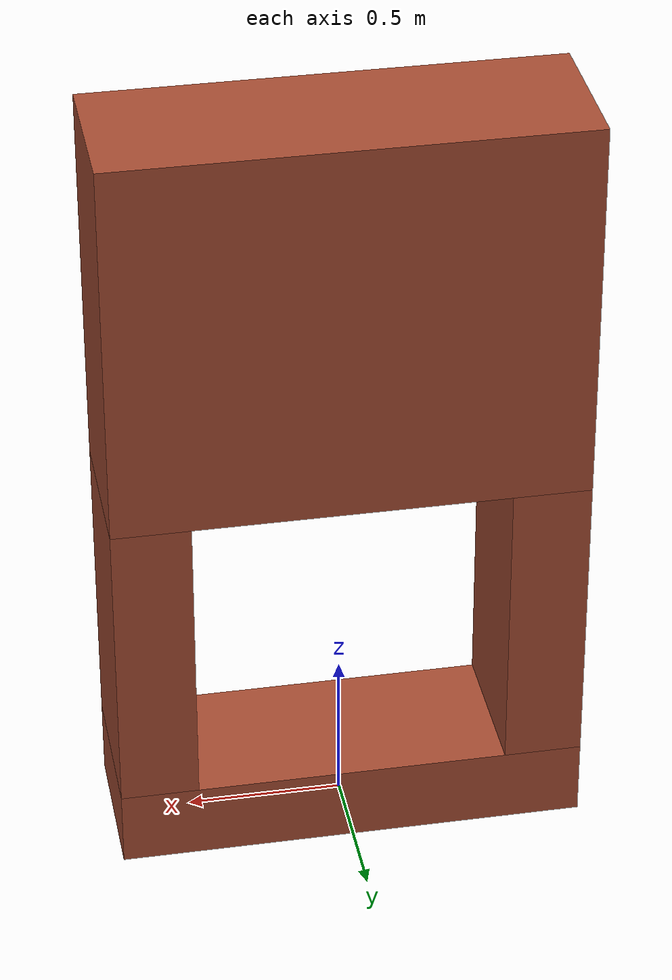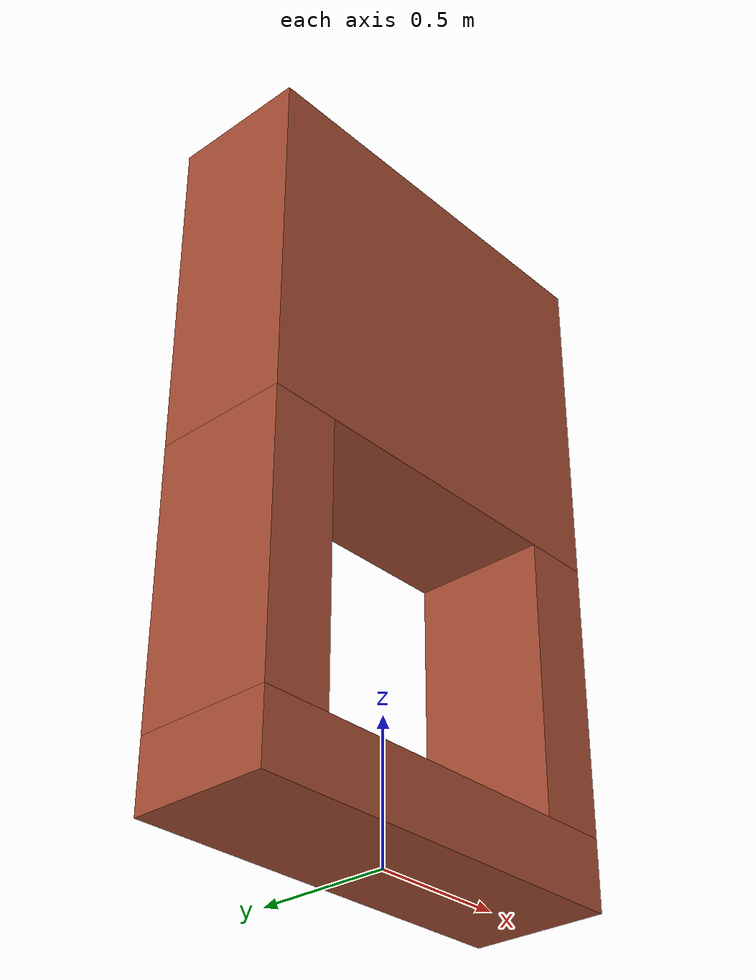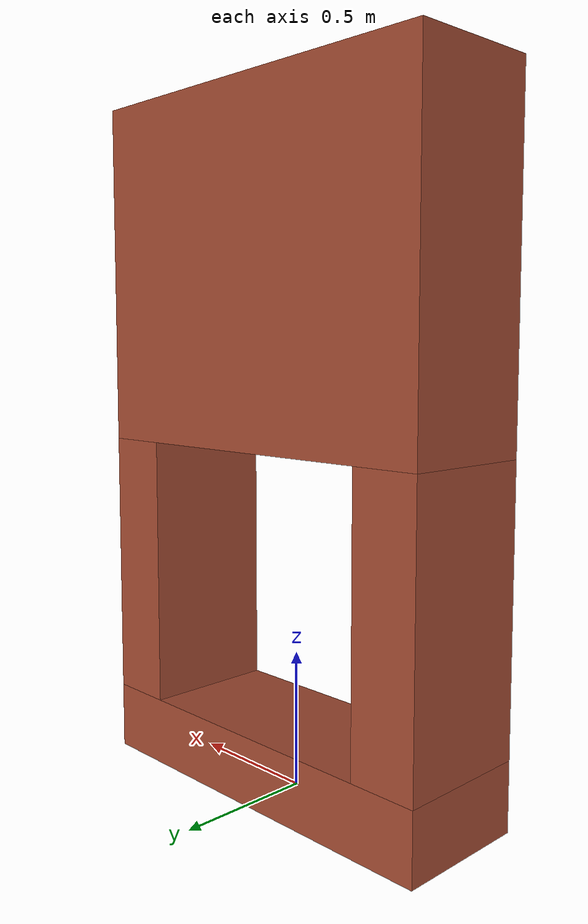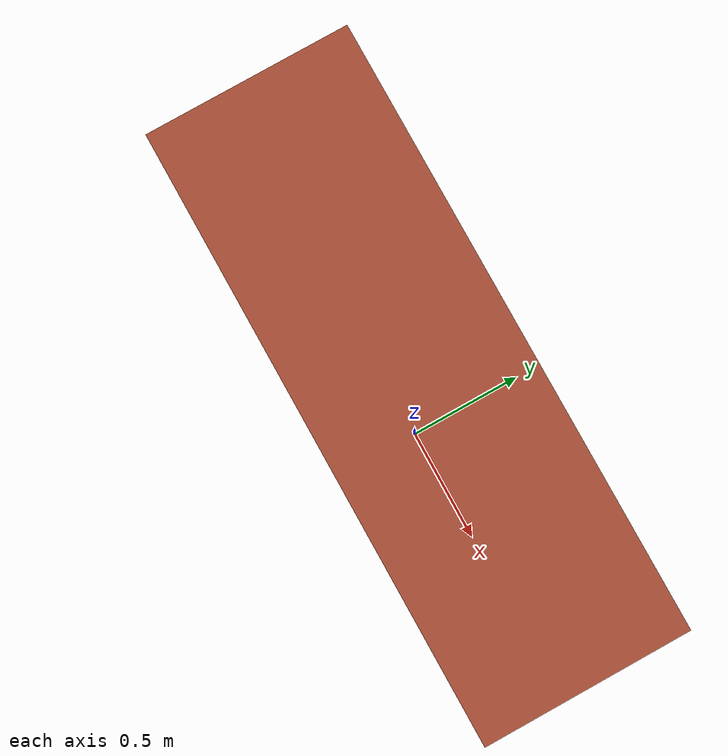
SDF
<?xml version="1.0" ?>
<sdf version="1.5">
  <model name="wall_obstacleC">

    <include>
      <name>short1</name>
      <pose>0 0 0 0 0 1.5708</pose>
      <uri>model://wall_obs_short</uri>
    </include>

    <include>
      <name>small1</name>
      <pose>-0.625 0 0.25 0 0 1.5708</pose>
      <uri>model://wall_obs_small</uri>
    </include>

    <include>
      <name>small2</name>
      <pose>0.625 0 0.25 0 0 1.5708</pose>
      <uri>model://wall_obs_small</uri>
    </include>

    <include>
      <name>long1</name>
      <pose>0 0 1.25 0 0 1.5708</pose>
      <uri>model://wall_obs_long</uri>
    </include>
  </model>
</sdf>

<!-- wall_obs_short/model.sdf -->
<sdf version='1.6'>
  <model name='wall_obs_short'>
    <pose frame=''>0 0 0 0 -0 0</pose>
    <link name='Wall_b'>
      <collision name='Wall_45_Collision'>
        <geometry>
          <box>
            <size>0.5 1.5 0.25</size>
          </box>
        </geometry>
        <pose frame=''>0 0 0.125 0 -0 0</pose>
      </collision>
      <visual name='Wall_45_Visual'>
        <pose frame=''>0 0 0.125 0 -0 0</pose>
        <geometry>
          <box>
            <size>0.5 1.5 0.25</size>
          </box>
        </geometry>
        <material>
          <script>
            <uri>file://media/materials/scripts/gazebo.material</uri>
            <name>Gazebo/Bricks</name>
          </script>
          <ambient>1 1 1 1</ambient>
        </material>
        <meta>
          <layer>0</layer>
        </meta>
      </visual>
        <pose frame=''>0 0 0 0 -0 0</pose>
    </link>
    <static>1</static>
  </model>
</sdf>

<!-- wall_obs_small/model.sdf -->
<sdf version='1.6'>
  <model name='wall_obs_small'>
    <pose frame=''>0 0 0 0 -0 0</pose>
    <link name='Wall_b'>
      <collision name='Wall_45_Collision'>
        <geometry>
          <box>
            <size>0.5 0.25 1</size>
          </box>
        </geometry>
        <pose frame=''>0 0 0.5 0 -0 0</pose>
      </collision>
      <visual name='Wall_45_Visual'>
        <pose frame=''>0 0 0.5 0 -0 0</pose>
        <geometry>
          <box>
            <size>0.5 0.25 1</size>
          </box>
        </geometry>
        <material>
          <script>
            <uri>file://media/materials/scripts/gazebo.material</uri>
            <name>Gazebo/Bricks</name>
          </script>
          <ambient>1 1 1 1</ambient>
        </material>
        <meta>
          <layer>0</layer>
        </meta>
      </visual>
        <pose frame=''>0 0 0 0 -0 0</pose>
    </link>
    <static>1</static>
  </model>
</sdf>

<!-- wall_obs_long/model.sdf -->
<sdf version='1.6'>
  <model name='wall_obs_long'>
    <pose frame=''>0 0 0 0 -0 0</pose>
    <link name='Wall_b'>
      <collision name='Wall_45_Collision'>
        <geometry>
          <box>
            <size>0.5 1.5 1.25</size>
          </box>
        </geometry>
        <pose frame=''>0 0 0.625 0 -0 0</pose>
      </collision>
      <visual name='Wall_45_Visual'>
        <pose frame=''>0 0 0.625 0 -0 0</pose>
        <geometry>
          <box>
            <size>0.5 1.5 1.25</size>
          </box>
        </geometry>
        <material>
          <script>
            <uri>file://media/materials/scripts/gazebo.material</uri>
            <name>Gazebo/Bricks</name>
          </script>
          <ambient>1 1 1 1</ambient>
        </material>
        <meta>
          <layer>0</layer>
        </meta>
      </visual>
        <pose frame=''>0 0 0 0 -0 0</pose>
    </link>
    <static>1</static>
  </model>
</sdf>
